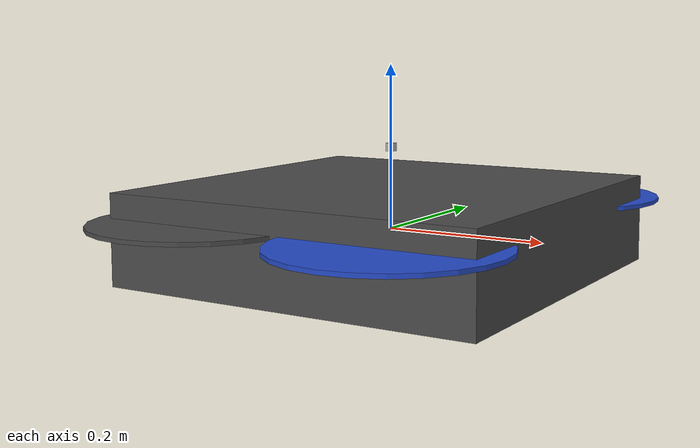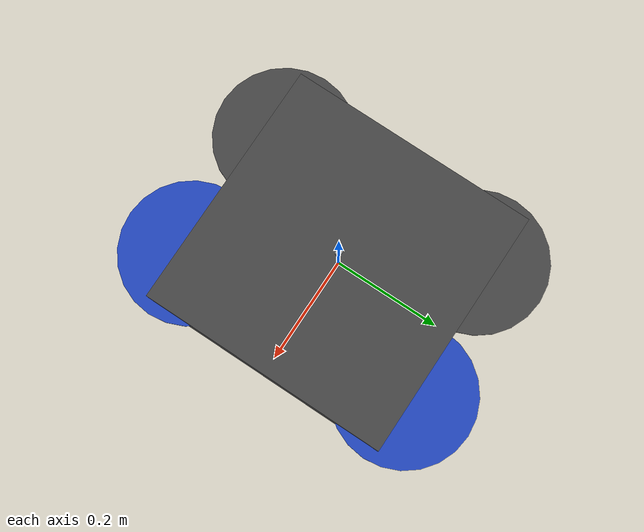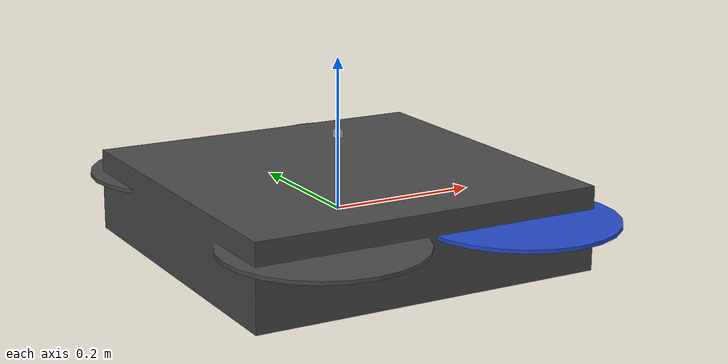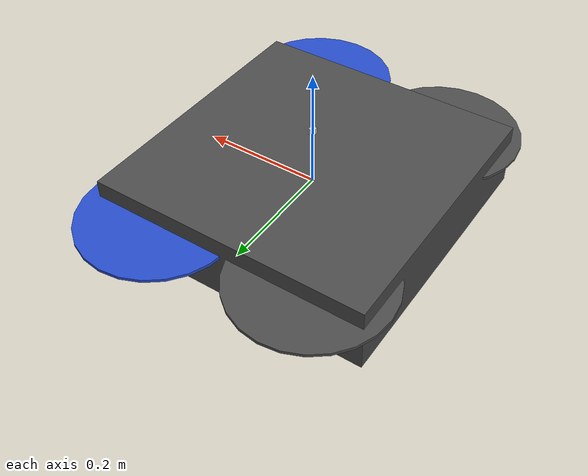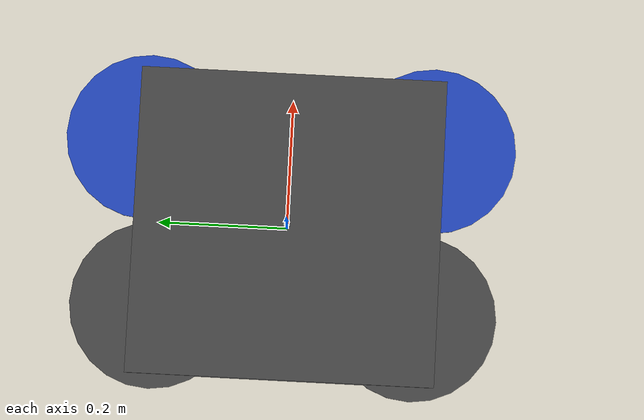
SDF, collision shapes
<sdf version='1.6'>
  <model name='iris'>
    <link name='base_link'>
      <pose frame=''>0 0 0 0 -0 0</pose>
      <inertial>
        <pose frame=''>0 0 0 0 -0 0</pose>
        <mass>1.5</mass>
        <inertia>
          <ixx>0.0347563</ixx>
          <ixy>0</ixy>
          <ixz>0</ixz>
          <iyy>0.0458929</iyy>
          <iyz>0</iyz>
          <izz>0.0977</izz>
        </inertia>
      </inertial>
      <collision name='base_link_inertia_collision'>
        <pose frame=''>0 0 0 0 -0 0</pose>
        <geometry>
          <box>
            <size>0.47 0.47 0.11</size>
          </box>
        </geometry>
        <surface>
          <contact>
            <ode>
              <min_depth>0.001</min_depth>
              <max_vel>0</max_vel>
            </ode>
          </contact>
          <friction>
            <ode/>
          </friction>
        </surface>
      </collision>
      <visual name='base_link_inertia_visual'>
        <pose frame=''>0 0 0 0 -0 0</pose>
        <geometry>
          <mesh>
            <scale>1 1 1</scale>
            <uri>model://rotors_description/meshes/iris.stl</uri>
          </mesh>
        </geometry>
        <material>
          <script>
            <name>Gazebo/DarkGrey</name>
            <uri>file://media/materials/scripts/gazebo.material</uri>
          </script>
        </material>
      </visual>
      <gravity>1</gravity>
      <velocity_decay/>
      <self_collide>0</self_collide>
    </link>
    <link name='/imu_link'>
      <pose frame=''>0 0 0 0 -0 0</pose>
      <inertial>
        <pose frame=''>0 0 0 0 -0 0</pose>
        <mass>0.015</mass>
        <inertia>
          <ixx>1e-05</ixx>
          <ixy>0</ixy>
          <ixz>0</ixz>
          <iyy>1e-05</iyy>
          <iyz>0</iyz>
          <izz>1e-05</izz>
        </inertia>
      </inertial>
    </link>
    <joint name='/imu_joint' type='revolute'>
      <child>/imu_link</child>
      <parent>base_link</parent>
      <axis>
        <xyz>1 0 0</xyz>
        <limit>
          <lower>0</lower>
          <upper>0</upper>
          <effort>0</effort>
          <velocity>0</velocity>
        </limit>
        <dynamics>
          <spring_reference>0</spring_reference>
          <spring_stiffness>0</spring_stiffness>
        </dynamics>
        <use_parent_model_frame>1</use_parent_model_frame>
      </axis>
    </joint>
    <link name='rotor_0'>
      <pose frame=''>0.13 -0.22 0.023 0 -0 0</pose>
      <inertial>
        <pose frame=''>0 0 0 0 -0 0</pose>
        <mass>0.005</mass>
        <inertia>
          <ixx>9.75e-07</ixx>
          <ixy>0</ixy>
          <ixz>0</ixz>
          <iyy>0.000273104</iyy>
          <iyz>0</iyz>
          <izz>0.000274004</izz>
        </inertia>
      </inertial>
      <collision name='rotor_0_collision'>
        <pose frame=''>0 0 0 0 -0 0</pose>
        <geometry>
          <cylinder>
            <length>0.005</length>
            <radius>0.128</radius>
          </cylinder>
        </geometry>
        <surface>
          <contact>
            <ode/>
          </contact>
          <friction>
            <ode/>
          </friction>
        </surface>
      </collision>
      <visual name='rotor_0_visual'>
        <pose frame=''>0 0 0 0 -0 0</pose>
        <geometry>
          <mesh>
            <scale>1 1 1</scale>
            <uri>model://rotors_description/meshes/iris_prop_ccw.dae</uri>
          </mesh>
        </geometry>
        <material>
          <script>
            <name>Gazebo/Blue</name>
            <uri>file://media/materials/scripts/gazebo.material</uri>
          </script>
        </material>
      </visual>
      <gravity>1</gravity>
      <velocity_decay/>
      <self_collide>0</self_collide>
    </link>
    <joint name='rotor_0_joint' type='revolute'>
      <child>rotor_0</child>
      <parent>base_link</parent>
      <axis>
        <xyz>0 0 1</xyz>
        <limit>
          <lower>-1e+16</lower>
          <upper>1e+16</upper>
        </limit>
        <dynamics>
          <spring_reference>0</spring_reference>
          <spring_stiffness>0</spring_stiffness>
        </dynamics>
        <use_parent_model_frame>1</use_parent_model_frame>
      </axis>
    </joint>
    <link name='rotor_1'>
      <pose frame=''>-0.13 0.2 0.023 0 -0 0</pose>
      <inertial>
        <pose frame=''>0 0 0 0 -0 0</pose>
        <mass>0.005</mass>
        <inertia>
          <ixx>9.75e-07</ixx>
          <ixy>0</ixy>
          <ixz>0</ixz>
          <iyy>0.000273104</iyy>
          <iyz>0</iyz>
          <izz>0.000274004</izz>
        </inertia>
      </inertial>
      <collision name='rotor_1_collision'>
        <pose frame=''>0 0 0 0 -0 0</pose>
        <geometry>
          <cylinder>
            <length>0.005</length>
            <radius>0.128</radius>
          </cylinder>
        </geometry>
        <surface>
          <contact>
            <ode/>
          </contact>
          <friction>
            <ode/>
          </friction>
        </surface>
      </collision>
      <visual name='rotor_1_visual'>
        <pose frame=''>0 0 0 0 -0 0</pose>
        <geometry>
          <mesh>
            <scale>1 1 1</scale>
            <uri>model://rotors_description/meshes/iris_prop_ccw.dae</uri>
          </mesh>
        </geometry>
        <material>
          <script>
            <name>Gazebo/DarkGrey</name>
            <uri>file://media/materials/scripts/gazebo.material</uri>
          </script>
        </material>
      </visual>
      <gravity>1</gravity>
      <velocity_decay/>
      <self_collide>0</self_collide>
    </link>
    <joint name='rotor_1_joint' type='revolute'>
      <child>rotor_1</child>
      <parent>base_link</parent>
      <axis>
        <xyz>0 0 1</xyz>
        <limit>
          <lower>-1e+16</lower>
          <upper>1e+16</upper>
        </limit>
        <dynamics>
          <spring_reference>0</spring_reference>
          <spring_stiffness>0</spring_stiffness>
        </dynamics>
        <use_parent_model_frame>1</use_parent_model_frame>
      </axis>
    </joint>
    <link name='rotor_2'>
      <pose frame=''>0.13 0.22 0.023 0 -0 0</pose>
      <inertial>
        <pose frame=''>0 0 0 0 -0 0</pose>
        <mass>0.005</mass>
        <inertia>
          <ixx>9.75e-07</ixx>
          <ixy>0</ixy>
          <ixz>0</ixz>
          <iyy>0.000273104</iyy>
          <iyz>0</iyz>
          <izz>0.000274004</izz>
        </inertia>
      </inertial>
      <collision name='rotor_2_collision'>
        <pose frame=''>0 0 0 0 -0 0</pose>
        <geometry>
          <cylinder>
            <length>0.005</length>
            <radius>0.128</radius>
          </cylinder>
        </geometry>
        <surface>
          <contact>
            <ode/>
          </contact>
          <friction>
            <ode/>
          </friction>
        </surface>
      </collision>
      <visual name='rotor_2_visual'>
        <pose frame=''>0 0 0 0 -0 0</pose>
        <geometry>
          <mesh>
            <scale>1 1 1</scale>
            <uri>model://rotors_description/meshes/iris_prop_cw.dae</uri>
          </mesh>
        </geometry>
        <material>
          <script>
            <name>Gazebo/Blue</name>
            <uri>file://media/materials/scripts/gazebo.material</uri>
          </script>
        </material>
      </visual>
      <gravity>1</gravity>
      <velocity_decay/>
      <self_collide>0</self_collide>
    </link>
    <joint name='rotor_2_joint' type='revolute'>
      <child>rotor_2</child>
      <parent>base_link</parent>
      <axis>
        <xyz>0 0 1</xyz>
        <limit>
          <lower>-1e+16</lower>
          <upper>1e+16</upper>
        </limit>
        <dynamics>
          <spring_reference>0</spring_reference>
          <spring_stiffness>0</spring_stiffness>
        </dynamics>
        <use_parent_model_frame>1</use_parent_model_frame>
      </axis>
    </joint>
    <link name='rotor_3'>
      <pose frame=''>-0.13 -0.2 0.023 0 -0 0</pose>
      <inertial>
        <pose frame=''>0 0 0 0 -0 0</pose>
        <mass>0.005</mass>
        <inertia>
          <ixx>9.75e-07</ixx>
          <ixy>0</ixy>
          <ixz>0</ixz>
          <iyy>0.000273104</iyy>
          <iyz>0</iyz>
          <izz>0.000274004</izz>
        </inertia>
      </inertial>
      <collision name='rotor_3_collision'>
        <pose frame=''>0 0 0 0 -0 0</pose>
        <geometry>
          <cylinder>
            <length>0.005</length>
            <radius>0.128</radius>
          </cylinder>
        </geometry>
        <surface>
          <contact>
            <ode/>
          </contact>
          <friction>
            <ode/>
          </friction>
        </surface>
      </collision>
      <visual name='rotor_3_visual'>
        <pose frame=''>0 0 0 0 -0 0</pose>
        <geometry>
          <mesh>
            <scale>1 1 1</scale>
            <uri>model://rotors_description/meshes/iris_prop_cw.dae</uri>
          </mesh>
        </geometry>
        <material>
          <script>
            <name>Gazebo/DarkGrey</name>
            <uri>file://media/materials/scripts/gazebo.material</uri>
          </script>
        </material>
      </visual>
      <gravity>1</gravity>
      <velocity_decay/>
      <self_collide>0</self_collide>
    </link>
    <joint name='rotor_3_joint' type='revolute'>
      <child>rotor_3</child>
      <parent>base_link</parent>
      <axis>
        <xyz>0 0 1</xyz>
        <limit>
          <lower>-1e+16</lower>
          <upper>1e+16</upper>
        </limit>
        <dynamics>
          <spring_reference>0</spring_reference>
          <spring_stiffness>0</spring_stiffness>
        </dynamics>
        <use_parent_model_frame>1</use_parent_model_frame>
      </axis>
    </joint>
    <plugin name='rosbag' filename='librotors_gazebo_multirotor_base_plugin.so'>
      <robotNamespace/>
      <linkName>base_link</linkName>
      <rotorVelocitySlowdownSim>10</rotorVelocitySlowdownSim>
    </plugin>
    <plugin name='front_right_motor_model' filename='librotors_gazebo_motor_model.so'>
      <robotNamespace/>
      <jointName>rotor_0_joint</jointName>
      <linkName>rotor_0</linkName>
      <turningDirection>ccw</turningDirection>
      <timeConstantUp>0.0125</timeConstantUp>
      <timeConstantDown>0.025</timeConstantDown>
      <maxRotVelocity>1100</maxRotVelocity>
      <motorConstant>8.54858e-06</motorConstant>
      <momentConstant>0.06</momentConstant>
      <commandSubTopic>/gazebo/command/motor_speed</commandSubTopic>
      <motorNumber>0</motorNumber>
      <rotorDragCoefficient>0.000806428</rotorDragCoefficient>
      <rollingMomentCoefficient>1e-06</rollingMomentCoefficient>
      <motorSpeedPubTopic>/motor_speed/0</motorSpeedPubTopic>
      <rotorVelocitySlowdownSim>10</rotorVelocitySlowdownSim>
    </plugin>
    <plugin name='back_left_motor_model' filename='librotors_gazebo_motor_model.so'>
      <robotNamespace/>
      <jointName>rotor_1_joint</jointName>
      <linkName>rotor_1</linkName>
      <turningDirection>ccw</turningDirection>
      <timeConstantUp>0.0125</timeConstantUp>
      <timeConstantDown>0.025</timeConstantDown>
      <maxRotVelocity>1100</maxRotVelocity>
      <motorConstant>8.54858e-06</motorConstant>
      <momentConstant>0.06</momentConstant>
      <commandSubTopic>/gazebo/command/motor_speed</commandSubTopic>
      <motorNumber>1</motorNumber>
      <rotorDragCoefficient>0.000806428</rotorDragCoefficient>
      <rollingMomentCoefficient>1e-06</rollingMomentCoefficient>
      <motorSpeedPubTopic>/motor_speed/1</motorSpeedPubTopic>
      <rotorVelocitySlowdownSim>10</rotorVelocitySlowdownSim>
    </plugin>
    <plugin name='front_left_motor_model' filename='librotors_gazebo_motor_model.so'>
      <robotNamespace/>
      <jointName>rotor_2_joint</jointName>
      <linkName>rotor_2</linkName>
      <turningDirection>cw</turningDirection>
      <timeConstantUp>0.0125</timeConstantUp>
      <timeConstantDown>0.025</timeConstantDown>
      <maxRotVelocity>1100</maxRotVelocity>
      <motorConstant>8.54858e-06</motorConstant>
      <momentConstant>0.06</momentConstant>
      <commandSubTopic>/gazebo/command/motor_speed</commandSubTopic>
      <motorNumber>2</motorNumber>
      <rotorDragCoefficient>0.000806428</rotorDragCoefficient>
      <rollingMomentCoefficient>1e-06</rollingMomentCoefficient>
      <motorSpeedPubTopic>/motor_speed/2</motorSpeedPubTopic>
      <rotorVelocitySlowdownSim>10</rotorVelocitySlowdownSim>
    </plugin>
    <plugin name='back_right_motor_model' filename='librotors_gazebo_motor_model.so'>
      <robotNamespace/>
      <jointName>rotor_3_joint</jointName>
      <linkName>rotor_3</linkName>
      <turningDirection>cw</turningDirection>
      <timeConstantUp>0.0125</timeConstantUp>
      <timeConstantDown>0.025</timeConstantDown>
      <maxRotVelocity>1100</maxRotVelocity>
      <motorConstant>8.54858e-06</motorConstant>
      <momentConstant>0.06</momentConstant>
      <commandSubTopic>/gazebo/command/motor_speed</commandSubTopic>
      <motorNumber>3</motorNumber>
      <rotorDragCoefficient>0.000806428</rotorDragCoefficient>
      <rollingMomentCoefficient>1e-06</rollingMomentCoefficient>
      <motorSpeedPubTopic>/motor_speed/3</motorSpeedPubTopic>
      <rotorVelocitySlowdownSim>10</rotorVelocitySlowdownSim>
    </plugin>
    <plugin name='mavlink_interface' filename='librotors_gazebo_mavlink_interface.so'>
      <robotNamespace/>
      <imuSubTopic>/imu</imuSubTopic>
      <mavlink_addr>INADDR_ANY</mavlink_addr>
      <mavlink_udp_port>14560</mavlink_udp_port>
      <motorSpeedCommandPubTopic>/gazebo/command/motor_speed</motorSpeedCommandPubTopic>
      <control_channels>
        <channel name='rotor1'>
          <input_index>0</input_index>
          <input_offset>0</input_offset>
          <input_scaling>1000</input_scaling>
          <zero_position_disarmed>0</zero_position_disarmed>
          <zero_position_armed>100</zero_position_armed>
          <joint_control_type>velocity</joint_control_type>
        </channel>
        <channel name='rotor2'>
          <input_index>1</input_index>
          <input_offset>0</input_offset>
          <input_scaling>1000</input_scaling>
          <zero_position_disarmed>0</zero_position_disarmed>
          <zero_position_armed>100</zero_position_armed>
          <joint_control_type>velocity</joint_control_type>
        </channel>
        <channel name='rotor3'>
          <input_index>2</input_index>
          <input_offset>0</input_offset>
          <input_scaling>1000</input_scaling>
          <zero_position_disarmed>0</zero_position_disarmed>
          <zero_position_armed>100</zero_position_armed>
          <joint_control_type>velocity</joint_control_type>
        </channel>
        <channel name='rotor4'>
          <input_index>3</input_index>
          <input_offset>0</input_offset>
          <input_scaling>1000</input_scaling>
          <zero_position_disarmed>0</zero_position_disarmed>
          <zero_position_armed>100</zero_position_armed>
          <joint_control_type>velocity</joint_control_type>
        </channel>
        <channel name='rotor5'>
          <input_index>4</input_index>
          <input_offset>1</input_offset>
          <input_scaling>324.6</input_scaling>
          <zero_position_disarmed>0</zero_position_disarmed>
          <zero_position_armed>0</zero_position_armed>
          <joint_control_type>velocity</joint_control_type>
          <joint_control_pid>
            <p>0.1</p>
            <i>0</i>
            <d>0</d>
            <iMax>0.0</iMax>
            <iMin>0.0</iMin>
            <cmdMax>2</cmdMax>
            <cmdMin>-2</cmdMin>
          </joint_control_pid>
          <joint_name>zephyr_delta_wing::propeller_joint</joint_name>
        </channel>
        <channel name='rotor6'>
          <input_index>5</input_index>
          <input_offset>0</input_offset>
          <input_scaling>0.524</input_scaling>
          <zero_position_disarmed>0</zero_position_disarmed>
          <zero_position_armed>0</zero_position_armed>
          <joint_control_type>position</joint_control_type>
          <joint_name>zephyr_delta_wing::flap_left_joint</joint_name>
          <joint_control_pid>
            <p>10.0</p>
            <i>0</i>
            <d>0</d>
            <iMax>0</iMax>
            <iMin>0</iMin>
            <cmdMax>20</cmdMax>
            <cmdMin>-20</cmdMin>
          </joint_control_pid>
        </channel>
        <channel name='rotor7'>
          <input_index>6</input_index>
          <input_offset>0</input_offset>
          <input_scaling>0.524</input_scaling>
          <zero_position_disarmed>0</zero_position_disarmed>
          <zero_position_armed>0</zero_position_armed>
          <joint_control_type>position</joint_control_type>
          <joint_name>zephyr_delta_wing::flap_right_joint</joint_name>
          <joint_control_pid>
            <p>10.0</p>
            <i>0</i>
            <d>0</d>
            <iMax>0</iMax>
            <iMin>0</iMin>
            <cmdMax>20</cmdMax>
            <cmdMin>-20</cmdMin>
          </joint_control_pid>
        </channel>
        <channel name='rotor8'>
          <input_index>7</input_index>
          <input_offset>0</input_offset>
          <input_scaling>0.524</input_scaling>
          <zero_position_disarmed>0</zero_position_disarmed>
          <zero_position_armed>0</zero_position_armed>
          <joint_control_type>position</joint_control_type>
        </channel>
      </control_channels>
    </plugin>
    <static>0</static>
    <plugin name='rotors_gazebo_imu_plugin' filename='librotors_gazebo_imu_plugin.so'>
      <robotNamespace/>
      <linkName>/imu_link</linkName>
      <imuTopic>/imu</imuTopic>
      <gyroscopeNoiseDensity>0.0003394</gyroscopeNoiseDensity>
      <gyroscopeRandomWalk>3.8785e-05</gyroscopeRandomWalk>
      <gyroscopeBiasCorrelationTime>1000.0</gyroscopeBiasCorrelationTime>
      <gyroscopeTurnOnBiasSigma>0.0087</gyroscopeTurnOnBiasSigma>
      <accelerometerNoiseDensity>0.004</accelerometerNoiseDensity>
      <accelerometerRandomWalk>0.006</accelerometerRandomWalk>
      <accelerometerBiasCorrelationTime>300.0</accelerometerBiasCorrelationTime>
      <accelerometerTurnOnBiasSigma>0.196</accelerometerTurnOnBiasSigma>
    </plugin>
<!-- ========================== Camera ============================= -->
    <link name="camera_link">
      <inertial>
        <pose frame=''>-0.041 0.05 -0.1 3.14 2.355 3.14</pose>
        <mass>0.000001</mass>
        <inertia>
          <ixx>0.0001</ixx>
          <ixy>0</ixy>
          <ixz>0</ixz>
          <iyy>0.001</iyy>
          <iyz>0</iyz>
          <izz>0.0001</izz>
        </inertia>
      </inertial>
      <collision name='collision'>
        <pose frame=''>-0.041 0.05 -0.1 3.14 2.355 3.14</pose>
        <geometry>
          <box>
            <size>0.01 0.01 0.01</size>
          </box>
        </geometry>
      </collision>
      <visual name='visual'>
        <pose frame=''>-0.041 0.05 -0.1 3.14 2.355 3.14</pose>
        <geometry>
          <box>
            <size>0.01 0.01 0.01</size>
          </box>
        </geometry>
      </visual>
      <sensor name="camera" type="camera">
        <pose frame=''>-0.041 0.05 -0.1 3.14 2.355 3.14</pose>
        <camera>
          <horizontal_fov>2.0466666</horizontal_fov> <!-- in radians -->
          <image>
            <format>R8G8B8</format>
            <width>640</width>
            <height>360</height>
          </image>
          <clip>
            <near>0.05</near>
            <far>300</far>
          </clip>
        </camera>
        <always_on>1</always_on>
        <update_rate>20</update_rate>
        <visualize>false</visualize>
        <plugin name="camera_controller" filename="libgazebo_ros_camera.so">
          <alwaysOn>true</alwaysOn>
          <updateRate>0.0</updateRate>
          <cameraName>iarc/camera/right</cameraName>
          <imageTopicName>image_raw</imageTopicName>
          <cameraInfoTopicName>camera_info</cameraInfoTopicName>
          <frameName>camera_optical_frame</frameName>
          <hackBaseline>0.0</hackBaseline>
          <distortionK1>0.0</distortionK1>
          <distortionK2>0.0</distortionK2>
          <distortionK3>0.0</distortionK3>
          <distortionT1>0.0</distortionT1>
          <distortionT2>0.0</distortionT2>
        </plugin>
      </sensor>
    </link>
    <joint name='camera_joint' type='revolute'>
      <child>camera_link</child>
      <parent>base_link</parent>
      <pose frame=''>0 0 0 0 0 0</pose>
      <axis>
        <xyz>1 0 0</xyz>
        <limit>
          <lower>0</lower>
          <upper>0</upper>
        </limit>
        <use_parent_model_frame>1</use_parent_model_frame>
      </axis>
    </joint>

<!-- ========================== LiDar ============================= -->
    <link name="lidar_link">
      <inertial>
        <pose frame=''>0 0 0.1 0 0 0</pose>
        <mass>0.000001</mass>
        <inertia>
          <ixx>0.0001</ixx>
          <ixy>0</ixy>
          <ixz>0</ixz>
          <iyy>0.001</iyy>
          <iyz>0</iyz>
          <izz>0.0001</izz>
        </inertia>
      </inertial>
      <collision name='collision'>
        <pose frame=''>0 0 0.1 0 0 0</pose>
        <geometry>
          <box>
            <size>0.01 0.01 0.01</size>
          </box>
        </geometry>
      </collision>
      <visual name='visual'>
        <pose frame=''>0 0 0.1 0 0 0</pose>
        <geometry>
          <box>
            <size>0.01 0.01 0.01</size>
          </box>
        </geometry>
      </visual>
      <sensor type="gpu_ray" name="head_hokuyo_sensor">
        <pose>0 0 0 0 0 0</pose>
        <visualize>true</visualize>
        <update_rate>100</update_rate>
        <ray>
        <scan>
          <horizontal>
            <samples>500</samples>
            <resolution>1</resolution>
            <min_angle>0</min_angle>
            <max_angle>6.28</max_angle>
          </horizontal>

        </scan>
        <range>
          <min>1.20 </min>
          <max>30.0</max>
          <resolution>0.01</resolution>
        </range>
        </ray>
        <plugin name="gazebo_ros_head_hokuyo_controller" filename="libgazebo_ros_gpu_laser.so">
          <topicName>/iris/laser/scan</topicName>
          <frameName>base_link</frameName>
        </plugin>
    </sensor>

    </link>

    <joint name='lidar_joint' type='revolute'>
      <child>lidar_link</child>
      <parent>base_link</parent>
      <pose frame=''>0 0 0 0 0 0</pose>
      <axis>
        <xyz>1 0 0</xyz>
        <limit>
          <lower>0</lower>
          <upper>0</upper>
        </limit>
        <use_parent_model_frame>1</use_parent_model_frame>
      </axis>
    </joint>
  </model>
</sdf>
